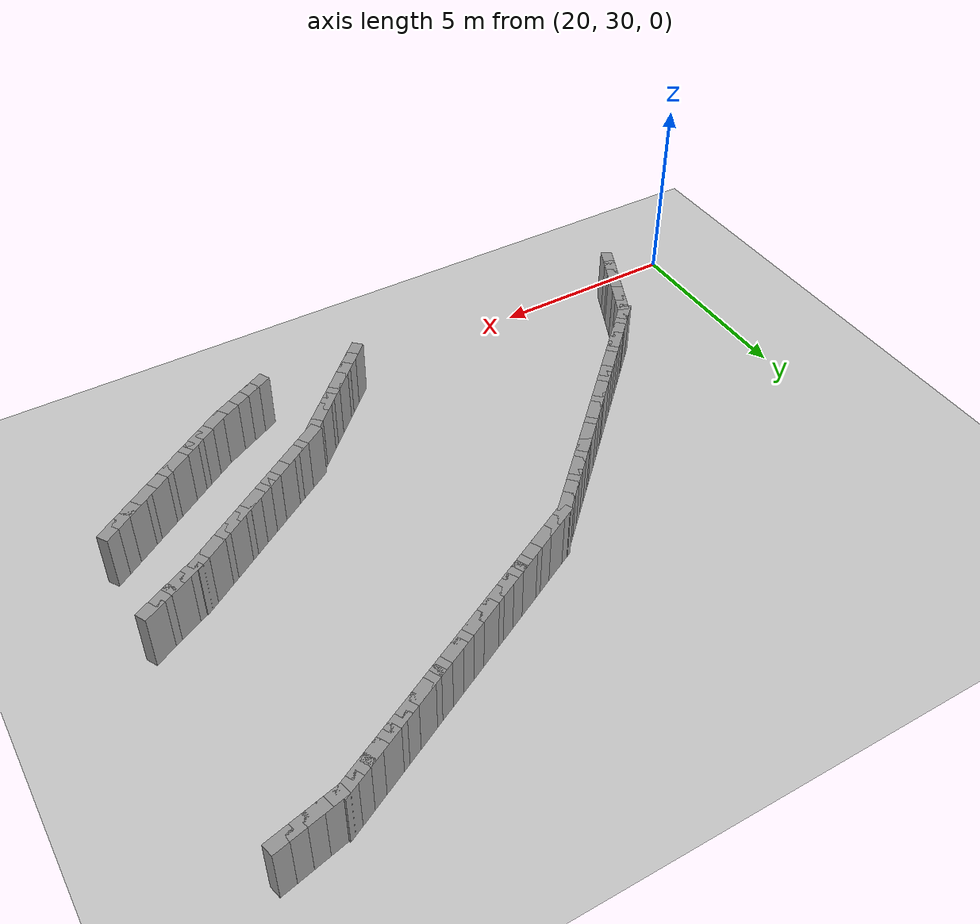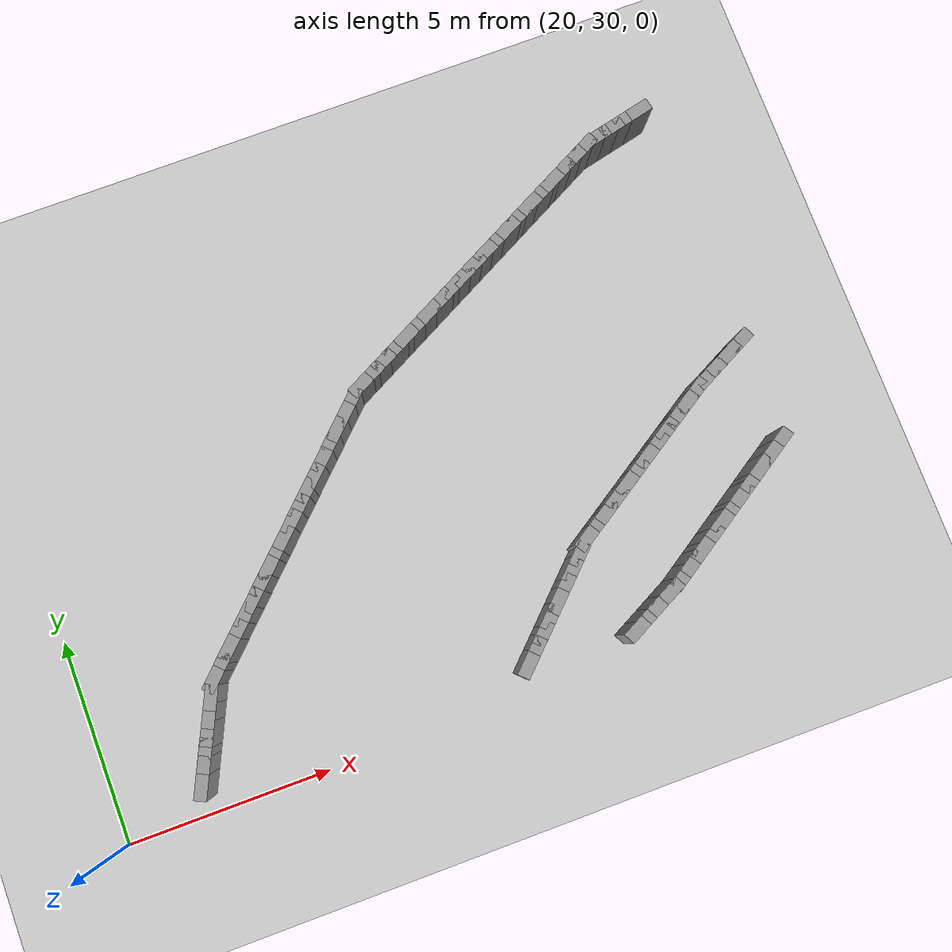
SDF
<sdf version="1.5">
 <world name="test_l_shape">
  <include><uri>model://sun</uri></include>
  <include><uri>model://ground_plane</uri></include>
  <model name="curbL_60">
   <static>true</static>
   <pose>37.414 42.278 0.750 0 0 -2.911</pose>
   <link name="link">
    <collision name="col"><geometry><box><size>0.600 0.300 1.500</size></box></geometry></collision>
    <visual name="vis">
     <geometry><box><size>0.600 0.300 1.500</size></box></geometry>
     <material><ambient>0.6 0.6 0.6 1</ambient><diffuse>0.6 0.6 0.6 1</diffuse></material>
    </visual>
   </link>
  </model>
  <model name="curbL_61">
   <static>true</static>
   <pose>37.024 42.187 0.750 0 0 -2.911</pose>
   <link name="link">
    <collision name="col"><geometry><box><size>0.600 0.300 1.500</size></box></geometry></collision>
    <visual name="vis">
     <geometry><box><size>0.600 0.300 1.500</size></box></geometry>
     <material><ambient>0.6 0.6 0.6 1</ambient><diffuse>0.6 0.6 0.6 1</diffuse></material>
    </visual>
   </link>
  </model>
  <model name="curbL_62">
   <static>true</static>
   <pose>36.635 42.096 0.750 0 0 -2.911</pose>
   <link name="link">
    <collision name="col"><geometry><box><size>0.600 0.300 1.500</size></box></geometry></collision>
    <visual name="vis">
     <geometry><box><size>0.600 0.300 1.500</size></box></geometry>
     <material><ambient>0.6 0.6 0.6 1</ambient><diffuse>0.6 0.6 0.6 1</diffuse></material>
    </visual>
   </link>
  </model>
  <model name="curbL_63">
   <static>true</static>
   <pose>36.245 42.005 0.750 0 0 -2.911</pose>
   <link name="link">
    <collision name="col"><geometry><box><size>0.600 0.300 1.500</size></box></geometry></collision>
    <visual name="vis">
     <geometry><box><size>0.600 0.300 1.500</size></box></geometry>
     <material><ambient>0.6 0.6 0.6 1</ambient><diffuse>0.6 0.6 0.6 1</diffuse></material>
    </visual>
   </link>
  </model>
  <model name="curbL_64">
   <static>true</static>
   <pose>35.867 41.885 0.750 0 0 -2.661</pose>
   <link name="link">
    <collision name="col"><geometry><box><size>0.600 0.300 1.500</size></box></geometry></collision>
    <visual name="vis">
     <geometry><box><size>0.600 0.300 1.500</size></box></geometry>
     <material><ambient>0.6 0.6 0.6 1</ambient><diffuse>0.6 0.6 0.6 1</diffuse></material>
    </visual>
   </link>
  </model>
  <model name="curbL_65">
   <static>true</static>
   <pose>35.512 41.700 0.750 0 0 -2.661</pose>
   <link name="link">
    <collision name="col"><geometry><box><size>0.600 0.300 1.500</size></box></geometry></collision>
    <visual name="vis">
     <geometry><box><size>0.600 0.300 1.500</size></box></geometry>
     <material><ambient>0.6 0.6 0.6 1</ambient><diffuse>0.6 0.6 0.6 1</diffuse></material>
    </visual>
   </link>
  </model>
  <model name="curbL_66">
   <static>true</static>
   <pose>35.157 41.515 0.750 0 0 -2.661</pose>
   <link name="link">
    <collision name="col"><geometry><box><size>0.600 0.300 1.500</size></box></geometry></collision>
    <visual name="vis">
     <geometry><box><size>0.600 0.300 1.500</size></box></geometry>
     <material><ambient>0.6 0.6 0.6 1</ambient><diffuse>0.6 0.6 0.6 1</diffuse></material>
    </visual>
   </link>
  </model>
  <model name="curbL_67">
   <static>true</static>
   <pose>34.802 41.330 0.750 0 0 -2.661</pose>
   <link name="link">
    <collision name="col"><geometry><box><size>0.600 0.300 1.500</size></box></geometry></collision>
    <visual name="vis">
     <geometry><box><size>0.600 0.300 1.500</size></box></geometry>
     <material><ambient>0.6 0.6 0.6 1</ambient><diffuse>0.6 0.6 0.6 1</diffuse></material>
    </visual>
   </link>
  </model>
  <model name="curbL_68">
   <static>true</static>
   <pose>34.448 41.145 0.750 0 0 -2.661</pose>
   <link name="link">
    <collision name="col"><geometry><box><size>0.600 0.300 1.500</size></box></geometry></collision>
    <visual name="vis">
     <geometry><box><size>0.600 0.300 1.500</size></box></geometry>
     <material><ambient>0.6 0.6 0.6 1</ambient><diffuse>0.6 0.6 0.6 1</diffuse></material>
    </visual>
   </link>
  </model>
  <model name="curbL_69">
   <static>true</static>
   <pose>34.093 40.960 0.750 0 0 -2.661</pose>
   <link name="link">
    <collision name="col"><geometry><box><size>0.600 0.300 1.500</size></box></geometry></collision>
    <visual name="vis">
     <geometry><box><size>0.600 0.300 1.500</size></box></geometry>
     <material><ambient>0.6 0.6 0.6 1</ambient><diffuse>0.6 0.6 0.6 1</diffuse></material>
    </visual>
   </link>
  </model>
  <model name="curbL_70">
   <static>true</static>
   <pose>33.738 40.775 0.750 0 0 -2.661</pose>
   <link name="link">
    <collision name="col"><geometry><box><size>0.600 0.300 1.500</size></box></geometry></collision>
    <visual name="vis">
     <geometry><box><size>0.600 0.300 1.500</size></box></geometry>
     <material><ambient>0.6 0.6 0.6 1</ambient><diffuse>0.6 0.6 0.6 1</diffuse></material>
    </visual>
   </link>
  </model>
  <model name="curbL_71">
   <static>true</static>
   <pose>33.384 40.590 0.750 0 0 -2.661</pose>
   <link name="link">
    <collision name="col"><geometry><box><size>0.600 0.300 1.500</size></box></geometry></collision>
    <visual name="vis">
     <geometry><box><size>0.600 0.300 1.500</size></box></geometry>
     <material><ambient>0.6 0.6 0.6 1</ambient><diffuse>0.6 0.6 0.6 1</diffuse></material>
    </visual>
   </link>
  </model>
  <model name="curbL_72">
   <static>true</static>
   <pose>33.029 40.405 0.750 0 0 -2.661</pose>
   <link name="link">
    <collision name="col"><geometry><box><size>0.600 0.300 1.500</size></box></geometry></collision>
    <visual name="vis">
     <geometry><box><size>0.600 0.300 1.500</size></box></geometry>
     <material><ambient>0.6 0.6 0.6 1</ambient><diffuse>0.6 0.6 0.6 1</diffuse></material>
    </visual>
   </link>
  </model>
  <model name="curbL_73">
   <static>true</static>
   <pose>32.674 40.220 0.750 0 0 -2.661</pose>
   <link name="link">
    <collision name="col"><geometry><box><size>0.600 0.300 1.500</size></box></geometry></collision>
    <visual name="vis">
     <geometry><box><size>0.600 0.300 1.500</size></box></geometry>
     <material><ambient>0.6 0.6 0.6 1</ambient><diffuse>0.6 0.6 0.6 1</diffuse></material>
    </visual>
   </link>
  </model>
  <model name="curbL_74">
   <static>true</static>
   <pose>32.320 40.036 0.750 0 0 -2.661</pose>
   <link name="link">
    <collision name="col"><geometry><box><size>0.600 0.300 1.500</size></box></geometry></collision>
    <visual name="vis">
     <geometry><box><size>0.600 0.300 1.500</size></box></geometry>
     <material><ambient>0.6 0.6 0.6 1</ambient><diffuse>0.6 0.6 0.6 1</diffuse></material>
    </visual>
   </link>
  </model>
  <model name="curbL_75">
   <static>true</static>
   <pose>31.965 39.851 0.750 0 0 -2.661</pose>
   <link name="link">
    <collision name="col"><geometry><box><size>0.600 0.300 1.500</size></box></geometry></collision>
    <visual name="vis">
     <geometry><box><size>0.600 0.300 1.500</size></box></geometry>
     <material><ambient>0.6 0.6 0.6 1</ambient><diffuse>0.6 0.6 0.6 1</diffuse></material>
    </visual>
   </link>
  </model>
  <model name="curbL_76">
   <static>true</static>
   <pose>31.610 39.666 0.750 0 0 -2.661</pose>
   <link name="link">
    <collision name="col"><geometry><box><size>0.600 0.300 1.500</size></box></geometry></collision>
    <visual name="vis">
     <geometry><box><size>0.600 0.300 1.500</size></box></geometry>
     <material><ambient>0.6 0.6 0.6 1</ambient><diffuse>0.6 0.6 0.6 1</diffuse></material>
    </visual>
   </link>
  </model>
  <model name="curbL_77">
   <static>true</static>
   <pose>31.256 39.481 0.750 0 0 -2.661</pose>
   <link name="link">
    <collision name="col"><geometry><box><size>0.600 0.300 1.500</size></box></geometry></collision>
    <visual name="vis">
     <geometry><box><size>0.600 0.300 1.500</size></box></geometry>
     <material><ambient>0.6 0.6 0.6 1</ambient><diffuse>0.6 0.6 0.6 1</diffuse></material>
    </visual>
   </link>
  </model>
  <model name="curbL_78">
   <static>true</static>
   <pose>30.901 39.296 0.750 0 0 -2.661</pose>
   <link name="link">
    <collision name="col"><geometry><box><size>0.600 0.300 1.500</size></box></geometry></collision>
    <visual name="vis">
     <geometry><box><size>0.600 0.300 1.500</size></box></geometry>
     <material><ambient>0.6 0.6 0.6 1</ambient><diffuse>0.6 0.6 0.6 1</diffuse></material>
    </visual>
   </link>
  </model>
  <model name="curbL_79">
   <static>true</static>
   <pose>30.546 39.111 0.750 0 0 -2.661</pose>
   <link name="link">
    <collision name="col"><geometry><box><size>0.600 0.300 1.500</size></box></geometry></collision>
    <visual name="vis">
     <geometry><box><size>0.600 0.300 1.500</size></box></geometry>
     <material><ambient>0.6 0.6 0.6 1</ambient><diffuse>0.6 0.6 0.6 1</diffuse></material>
    </visual>
   </link>
  </model>
  <model name="curbL_80">
   <static>true</static>
   <pose>30.191 38.926 0.750 0 0 -2.661</pose>
   <link name="link">
    <collision name="col"><geometry><box><size>0.600 0.300 1.500</size></box></geometry></collision>
    <visual name="vis">
     <geometry><box><size>0.600 0.300 1.500</size></box></geometry>
     <material><ambient>0.6 0.6 0.6 1</ambient><diffuse>0.6 0.6 0.6 1</diffuse></material>
    </visual>
   </link>
  </model>
  <model name="curbL_81">
   <static>true</static>
   <pose>29.837 38.741 0.750 0 0 -2.661</pose>
   <link name="link">
    <collision name="col"><geometry><box><size>0.600 0.300 1.500</size></box></geometry></collision>
    <visual name="vis">
     <geometry><box><size>0.600 0.300 1.500</size></box></geometry>
     <material><ambient>0.6 0.6 0.6 1</ambient><diffuse>0.6 0.6 0.6 1</diffuse></material>
    </visual>
   </link>
  </model>
  <model name="curbL_82">
   <static>true</static>
   <pose>29.482 38.556 0.750 0 0 -2.661</pose>
   <link name="link">
    <collision name="col"><geometry><box><size>0.600 0.300 1.500</size></box></geometry></collision>
    <visual name="vis">
     <geometry><box><size>0.600 0.300 1.500</size></box></geometry>
     <material><ambient>0.6 0.6 0.6 1</ambient><diffuse>0.6 0.6 0.6 1</diffuse></material>
    </visual>
   </link>
  </model>
  <model name="curbL_83">
   <static>true</static>
   <pose>29.127 38.371 0.750 0 0 -2.661</pose>
   <link name="link">
    <collision name="col"><geometry><box><size>0.600 0.300 1.500</size></box></geometry></collision>
    <visual name="vis">
     <geometry><box><size>0.600 0.300 1.500</size></box></geometry>
     <material><ambient>0.6 0.6 0.6 1</ambient><diffuse>0.6 0.6 0.6 1</diffuse></material>
    </visual>
   </link>
  </model>
  <model name="curbL_84">
   <static>true</static>
   <pose>28.773 38.186 0.750 0 0 -2.661</pose>
   <link name="link">
    <collision name="col"><geometry><box><size>0.600 0.300 1.500</size></box></geometry></collision>
    <visual name="vis">
     <geometry><box><size>0.600 0.300 1.500</size></box></geometry>
     <material><ambient>0.6 0.6 0.6 1</ambient><diffuse>0.6 0.6 0.6 1</diffuse></material>
    </visual>
   </link>
  </model>
  <model name="curbL_85">
   <static>true</static>
   <pose>28.460 37.943 0.750 0 0 -2.367</pose>
   <link name="link">
    <collision name="col"><geometry><box><size>0.600 0.300 1.500</size></box></geometry></collision>
    <visual name="vis">
     <geometry><box><size>0.600 0.300 1.500</size></box></geometry>
     <material><ambient>0.6 0.6 0.6 1</ambient><diffuse>0.6 0.6 0.6 1</diffuse></material>
    </visual>
   </link>
  </model>
  <model name="curbL_86">
   <static>true</static>
   <pose>28.174 37.663 0.750 0 0 -2.367</pose>
   <link name="link">
    <collision name="col"><geometry><box><size>0.600 0.300 1.500</size></box></geometry></collision>
    <visual name="vis">
     <geometry><box><size>0.600 0.300 1.500</size></box></geometry>
     <material><ambient>0.6 0.6 0.6 1</ambient><diffuse>0.6 0.6 0.6 1</diffuse></material>
    </visual>
   </link>
  </model>
  <model name="curbL_87">
   <static>true</static>
   <pose>27.889 37.384 0.750 0 0 -2.367</pose>
   <link name="link">
    <collision name="col"><geometry><box><size>0.600 0.300 1.500</size></box></geometry></collision>
    <visual name="vis">
     <geometry><box><size>0.600 0.300 1.500</size></box></geometry>
     <material><ambient>0.6 0.6 0.6 1</ambient><diffuse>0.6 0.6 0.6 1</diffuse></material>
    </visual>
   </link>
  </model>
  <model name="curbL_88">
   <static>true</static>
   <pose>27.603 37.104 0.750 0 0 -2.367</pose>
   <link name="link">
    <collision name="col"><geometry><box><size>0.600 0.300 1.500</size></box></geometry></collision>
    <visual name="vis">
     <geometry><box><size>0.600 0.300 1.500</size></box></geometry>
     <material><ambient>0.6 0.6 0.6 1</ambient><diffuse>0.6 0.6 0.6 1</diffuse></material>
    </visual>
   </link>
  </model>
  <model name="curbL_89">
   <static>true</static>
   <pose>27.317 36.824 0.750 0 0 -2.367</pose>
   <link name="link">
    <collision name="col"><geometry><box><size>0.600 0.300 1.500</size></box></geometry></collision>
    <visual name="vis">
     <geometry><box><size>0.600 0.300 1.500</size></box></geometry>
     <material><ambient>0.6 0.6 0.6 1</ambient><diffuse>0.6 0.6 0.6 1</diffuse></material>
    </visual>
   </link>
  </model>
  <model name="curbL_90">
   <static>true</static>
   <pose>27.031 36.544 0.750 0 0 -2.367</pose>
   <link name="link">
    <collision name="col"><geometry><box><size>0.600 0.300 1.500</size></box></geometry></collision>
    <visual name="vis">
     <geometry><box><size>0.600 0.300 1.500</size></box></geometry>
     <material><ambient>0.6 0.6 0.6 1</ambient><diffuse>0.6 0.6 0.6 1</diffuse></material>
    </visual>
   </link>
  </model>
  <model name="curbL_91">
   <static>true</static>
   <pose>26.745 36.265 0.750 0 0 -2.367</pose>
   <link name="link">
    <collision name="col"><geometry><box><size>0.600 0.300 1.500</size></box></geometry></collision>
    <visual name="vis">
     <geometry><box><size>0.600 0.300 1.500</size></box></geometry>
     <material><ambient>0.6 0.6 0.6 1</ambient><diffuse>0.6 0.6 0.6 1</diffuse></material>
    </visual>
   </link>
  </model>
  <model name="curbL_92">
   <static>true</static>
   <pose>26.459 35.985 0.750 0 0 -2.367</pose>
   <link name="link">
    <collision name="col"><geometry><box><size>0.600 0.300 1.500</size></box></geometry></collision>
    <visual name="vis">
     <geometry><box><size>0.600 0.300 1.500</size></box></geometry>
     <material><ambient>0.6 0.6 0.6 1</ambient><diffuse>0.6 0.6 0.6 1</diffuse></material>
    </visual>
   </link>
  </model>
  <model name="curbL_93">
   <static>true</static>
   <pose>26.173 35.705 0.750 0 0 -2.367</pose>
   <link name="link">
    <collision name="col"><geometry><box><size>0.600 0.300 1.500</size></box></geometry></collision>
    <visual name="vis">
     <geometry><box><size>0.600 0.300 1.500</size></box></geometry>
     <material><ambient>0.6 0.6 0.6 1</ambient><diffuse>0.6 0.6 0.6 1</diffuse></material>
    </visual>
   </link>
  </model>
  <model name="curbL_94">
   <static>true</static>
   <pose>25.887 35.425 0.750 0 0 -2.367</pose>
   <link name="link">
    <collision name="col"><geometry><box><size>0.600 0.300 1.500</size></box></geometry></collision>
    <visual name="vis">
     <geometry><box><size>0.600 0.300 1.500</size></box></geometry>
     <material><ambient>0.6 0.6 0.6 1</ambient><diffuse>0.6 0.6 0.6 1</diffuse></material>
    </visual>
   </link>
  </model>
  <model name="curbL_95">
   <static>true</static>
   <pose>25.601 35.146 0.750 0 0 -2.367</pose>
   <link name="link">
    <collision name="col"><geometry><box><size>0.600 0.300 1.500</size></box></geometry></collision>
    <visual name="vis">
     <geometry><box><size>0.600 0.300 1.500</size></box></geometry>
     <material><ambient>0.6 0.6 0.6 1</ambient><diffuse>0.6 0.6 0.6 1</diffuse></material>
    </visual>
   </link>
  </model>
  <model name="curbL_96">
   <static>true</static>
   <pose>25.315 34.866 0.750 0 0 -2.367</pose>
   <link name="link">
    <collision name="col"><geometry><box><size>0.600 0.300 1.500</size></box></geometry></collision>
    <visual name="vis">
     <geometry><box><size>0.600 0.300 1.500</size></box></geometry>
     <material><ambient>0.6 0.6 0.6 1</ambient><diffuse>0.6 0.6 0.6 1</diffuse></material>
    </visual>
   </link>
  </model>
  <model name="curbL_97">
   <static>true</static>
   <pose>25.029 34.586 0.750 0 0 -2.367</pose>
   <link name="link">
    <collision name="col"><geometry><box><size>0.600 0.300 1.500</size></box></geometry></collision>
    <visual name="vis">
     <geometry><box><size>0.600 0.300 1.500</size></box></geometry>
     <material><ambient>0.6 0.6 0.6 1</ambient><diffuse>0.6 0.6 0.6 1</diffuse></material>
    </visual>
   </link>
  </model>
  <model name="curbL_98">
   <static>true</static>
   <pose>24.743 34.306 0.750 0 0 -2.367</pose>
   <link name="link">
    <collision name="col"><geometry><box><size>0.600 0.300 1.500</size></box></geometry></collision>
    <visual name="vis">
     <geometry><box><size>0.600 0.300 1.500</size></box></geometry>
     <material><ambient>0.6 0.6 0.6 1</ambient><diffuse>0.6 0.6 0.6 1</diffuse></material>
    </visual>
   </link>
  </model>
  <model name="curbL_99">
   <static>true</static>
   <pose>24.458 34.027 0.750 0 0 -2.367</pose>
   <link name="link">
    <collision name="col"><geometry><box><size>0.600 0.300 1.500</size></box></geometry></collision>
    <visual name="vis">
     <geometry><box><size>0.600 0.300 1.500</size></box></geometry>
     <material><ambient>0.6 0.6 0.6 1</ambient><diffuse>0.6 0.6 0.6 1</diffuse></material>
    </visual>
   </link>
  </model>
  <model name="curbL_100">
   <static>true</static>
   <pose>24.172 33.747 0.750 0 0 -2.367</pose>
   <link name="link">
    <collision name="col"><geometry><box><size>0.600 0.300 1.500</size></box></geometry></collision>
    <visual name="vis">
     <geometry><box><size>0.600 0.300 1.500</size></box></geometry>
     <material><ambient>0.6 0.6 0.6 1</ambient><diffuse>0.6 0.6 0.6 1</diffuse></material>
    </visual>
   </link>
  </model>
  <model name="curbL_101">
   <static>true</static>
   <pose>23.886 33.467 0.750 0 0 -2.367</pose>
   <link name="link">
    <collision name="col"><geometry><box><size>0.600 0.300 1.500</size></box></geometry></collision>
    <visual name="vis">
     <geometry><box><size>0.600 0.300 1.500</size></box></geometry>
     <material><ambient>0.6 0.6 0.6 1</ambient><diffuse>0.6 0.6 0.6 1</diffuse></material>
    </visual>
   </link>
  </model>
  <model name="curbL_102">
   <static>true</static>
   <pose>23.600 33.188 0.750 0 0 -2.367</pose>
   <link name="link">
    <collision name="col"><geometry><box><size>0.600 0.300 1.500</size></box></geometry></collision>
    <visual name="vis">
     <geometry><box><size>0.600 0.300 1.500</size></box></geometry>
     <material><ambient>0.6 0.6 0.6 1</ambient><diffuse>0.6 0.6 0.6 1</diffuse></material>
    </visual>
   </link>
  </model>
  <model name="curbL_103">
   <static>true</static>
   <pose>23.314 32.908 0.750 0 0 -2.367</pose>
   <link name="link">
    <collision name="col"><geometry><box><size>0.600 0.300 1.500</size></box></geometry></collision>
    <visual name="vis">
     <geometry><box><size>0.600 0.300 1.500</size></box></geometry>
     <material><ambient>0.6 0.6 0.6 1</ambient><diffuse>0.6 0.6 0.6 1</diffuse></material>
    </visual>
   </link>
  </model>
  <model name="curbL_104">
   <static>true</static>
   <pose>23.133 32.554 0.750 0 0 -2.002</pose>
   <link name="link">
    <collision name="col"><geometry><box><size>0.600 0.300 1.500</size></box></geometry></collision>
    <visual name="vis">
     <geometry><box><size>0.600 0.300 1.500</size></box></geometry>
     <material><ambient>0.6 0.6 0.6 1</ambient><diffuse>0.6 0.6 0.6 1</diffuse></material>
    </visual>
   </link>
  </model>
  <model name="curbL_105">
   <static>true</static>
   <pose>22.966 32.191 0.750 0 0 -2.002</pose>
   <link name="link">
    <collision name="col"><geometry><box><size>0.600 0.300 1.500</size></box></geometry></collision>
    <visual name="vis">
     <geometry><box><size>0.600 0.300 1.500</size></box></geometry>
     <material><ambient>0.6 0.6 0.6 1</ambient><diffuse>0.6 0.6 0.6 1</diffuse></material>
    </visual>
   </link>
  </model>
  <model name="curbL_106">
   <static>true</static>
   <pose>22.799 31.827 0.750 0 0 -2.002</pose>
   <link name="link">
    <collision name="col"><geometry><box><size>0.600 0.300 1.500</size></box></geometry></collision>
    <visual name="vis">
     <geometry><box><size>0.600 0.300 1.500</size></box></geometry>
     <material><ambient>0.6 0.6 0.6 1</ambient><diffuse>0.6 0.6 0.6 1</diffuse></material>
    </visual>
   </link>
  </model>
  <model name="curbL_107">
   <static>true</static>
   <pose>22.631 31.464 0.750 0 0 -2.002</pose>
   <link name="link">
    <collision name="col"><geometry><box><size>0.600 0.300 1.500</size></box></geometry></collision>
    <visual name="vis">
     <geometry><box><size>0.600 0.300 1.500</size></box></geometry>
     <material><ambient>0.6 0.6 0.6 1</ambient><diffuse>0.6 0.6 0.6 1</diffuse></material>
    </visual>
   </link>
  </model>
  <model name="curbL_108">
   <static>true</static>
   <pose>22.464 31.101 0.750 0 0 -2.002</pose>
   <link name="link">
    <collision name="col"><geometry><box><size>0.600 0.300 1.500</size></box></geometry></collision>
    <visual name="vis">
     <geometry><box><size>0.600 0.300 1.500</size></box></geometry>
     <material><ambient>0.6 0.6 0.6 1</ambient><diffuse>0.6 0.6 0.6 1</diffuse></material>
    </visual>
   </link>
  </model>
  <model name="curbL_109">
   <static>true</static>
   <pose>22.297 30.737 0.750 0 0 -2.002</pose>
   <link name="link">
    <collision name="col"><geometry><box><size>0.600 0.300 1.500</size></box></geometry></collision>
    <visual name="vis">
     <geometry><box><size>0.600 0.300 1.500</size></box></geometry>
     <material><ambient>0.6 0.6 0.6 1</ambient><diffuse>0.6 0.6 0.6 1</diffuse></material>
    </visual>
   </link>
  </model>
  <model name="curbR_6">
   <static>true</static>
   <pose>30.177 30.743 0.750 0 0 0.775</pose>
   <link name="link">
    <collision name="col"><geometry><box><size>0.600 0.300 1.500</size></box></geometry></collision>
    <visual name="vis">
     <geometry><box><size>0.600 0.300 1.500</size></box></geometry>
     <material><ambient>0.6 0.6 0.6 1</ambient><diffuse>0.6 0.6 0.6 1</diffuse></material>
    </visual>
   </link>
  </model>
  <model name="curbR_7">
   <static>true</static>
   <pose>30.463 31.023 0.750 0 0 0.775</pose>
   <link name="link">
    <collision name="col"><geometry><box><size>0.600 0.300 1.500</size></box></geometry></collision>
    <visual name="vis">
     <geometry><box><size>0.600 0.300 1.500</size></box></geometry>
     <material><ambient>0.6 0.6 0.6 1</ambient><diffuse>0.6 0.6 0.6 1</diffuse></material>
    </visual>
   </link>
  </model>
  <model name="curbR_8">
   <static>true</static>
   <pose>30.749 31.303 0.750 0 0 0.775</pose>
   <link name="link">
    <collision name="col"><geometry><box><size>0.600 0.300 1.500</size></box></geometry></collision>
    <visual name="vis">
     <geometry><box><size>0.600 0.300 1.500</size></box></geometry>
     <material><ambient>0.6 0.6 0.6 1</ambient><diffuse>0.6 0.6 0.6 1</diffuse></material>
    </visual>
   </link>
  </model>
  <model name="curbR_9">
   <static>true</static>
   <pose>31.034 31.583 0.750 0 0 0.775</pose>
   <link name="link">
    <collision name="col"><geometry><box><size>0.600 0.300 1.500</size></box></geometry></collision>
    <visual name="vis">
     <geometry><box><size>0.600 0.300 1.500</size></box></geometry>
     <material><ambient>0.6 0.6 0.6 1</ambient><diffuse>0.6 0.6 0.6 1</diffuse></material>
    </visual>
   </link>
  </model>
  <model name="curbR_10">
   <static>true</static>
   <pose>31.320 31.863 0.750 0 0 0.775</pose>
   <link name="link">
    <collision name="col"><geometry><box><size>0.600 0.300 1.500</size></box></geometry></collision>
    <visual name="vis">
     <geometry><box><size>0.600 0.300 1.500</size></box></geometry>
     <material><ambient>0.6 0.6 0.6 1</ambient><diffuse>0.6 0.6 0.6 1</diffuse></material>
    </visual>
   </link>
  </model>
  <model name="curbR_11">
   <static>true</static>
   <pose>31.606 32.143 0.750 0 0 0.775</pose>
   <link name="link">
    <collision name="col"><geometry><box><size>0.600 0.300 1.500</size></box></geometry></collision>
    <visual name="vis">
     <geometry><box><size>0.600 0.300 1.500</size></box></geometry>
     <material><ambient>0.6 0.6 0.6 1</ambient><diffuse>0.6 0.6 0.6 1</diffuse></material>
    </visual>
   </link>
  </model>
  <model name="curbR_12">
   <static>true</static>
   <pose>31.891 32.423 0.750 0 0 0.775</pose>
   <link name="link">
    <collision name="col"><geometry><box><size>0.600 0.300 1.500</size></box></geometry></collision>
    <visual name="vis">
     <geometry><box><size>0.600 0.300 1.500</size></box></geometry>
     <material><ambient>0.6 0.6 0.6 1</ambient><diffuse>0.6 0.6 0.6 1</diffuse></material>
    </visual>
   </link>
  </model>
  <model name="curbR_13">
   <static>true</static>
   <pose>32.177 32.703 0.750 0 0 0.775</pose>
   <link name="link">
    <collision name="col"><geometry><box><size>0.600 0.300 1.500</size></box></geometry></collision>
    <visual name="vis">
     <geometry><box><size>0.600 0.300 1.500</size></box></geometry>
     <material><ambient>0.6 0.6 0.6 1</ambient><diffuse>0.6 0.6 0.6 1</diffuse></material>
    </visual>
   </link>
  </model>
  <model name="curbR_14">
   <static>true</static>
   <pose>32.463 32.982 0.750 0 0 0.574</pose>
   <link name="link">
    <collision name="col"><geometry><box><size>0.600 0.300 1.500</size></box></geometry></collision>
    <visual name="vis">
     <geometry><box><size>0.600 0.300 1.500</size></box></geometry>
     <material><ambient>0.6 0.6 0.6 1</ambient><diffuse>0.6 0.6 0.6 1</diffuse></material>
    </visual>
   </link>
  </model>
  <model name="curbR_15">
   <static>true</static>
   <pose>32.799 33.199 0.750 0 0 0.574</pose>
   <link name="link">
    <collision name="col"><geometry><box><size>0.600 0.300 1.500</size></box></geometry></collision>
    <visual name="vis">
     <geometry><box><size>0.600 0.300 1.500</size></box></geometry>
     <material><ambient>0.6 0.6 0.6 1</ambient><diffuse>0.6 0.6 0.6 1</diffuse></material>
    </visual>
   </link>
  </model>
  <model name="curbR_16">
   <static>true</static>
   <pose>33.135 33.416 0.750 0 0 0.574</pose>
   <link name="link">
    <collision name="col"><geometry><box><size>0.600 0.300 1.500</size></box></geometry></collision>
    <visual name="vis">
     <geometry><box><size>0.600 0.300 1.500</size></box></geometry>
     <material><ambient>0.6 0.6 0.6 1</ambient><diffuse>0.6 0.6 0.6 1</diffuse></material>
    </visual>
   </link>
  </model>
  <model name="curbR_17">
   <static>true</static>
   <pose>33.471 33.634 0.750 0 0 0.574</pose>
   <link name="link">
    <collision name="col"><geometry><box><size>0.600 0.300 1.500</size></box></geometry></collision>
    <visual name="vis">
     <geometry><box><size>0.600 0.300 1.500</size></box></geometry>
     <material><ambient>0.6 0.6 0.6 1</ambient><diffuse>0.6 0.6 0.6 1</diffuse></material>
    </visual>
   </link>
  </model>
  <model name="curbR_18">
   <static>true</static>
   <pose>33.807 33.851 0.750 0 0 0.574</pose>
   <link name="link">
    <collision name="col"><geometry><box><size>0.600 0.300 1.500</size></box></geometry></collision>
    <visual name="vis">
     <geometry><box><size>0.600 0.300 1.500</size></box></geometry>
     <material><ambient>0.6 0.6 0.6 1</ambient><diffuse>0.6 0.6 0.6 1</diffuse></material>
    </visual>
   </link>
  </model>
  <model name="curbR_19">
   <static>true</static>
   <pose>34.143 34.068 0.750 0 0 0.574</pose>
   <link name="link">
    <collision name="col"><geometry><box><size>0.600 0.300 1.500</size></box></geometry></collision>
    <visual name="vis">
     <geometry><box><size>0.600 0.300 1.500</size></box></geometry>
     <material><ambient>0.6 0.6 0.6 1</ambient><diffuse>0.6 0.6 0.6 1</diffuse></material>
    </visual>
   </link>
  </model>
  <model name="curbR_20">
   <static>true</static>
   <pose>34.479 34.285 0.750 0 0 0.574</pose>
   <link name="link">
    <collision name="col"><geometry><box><size>0.600 0.300 1.500</size></box></geometry></collision>
    <visual name="vis">
     <geometry><box><size>0.600 0.300 1.500</size></box></geometry>
     <material><ambient>0.6 0.6 0.6 1</ambient><diffuse>0.6 0.6 0.6 1</diffuse></material>
    </visual>
   </link>
  </model>
  <model name="curbR_21">
   <static>true</static>
   <pose>34.815 34.502 0.750 0 0 0.574</pose>
   <link name="link">
    <collision name="col"><geometry><box><size>0.600 0.300 1.500</size></box></geometry></collision>
    <visual name="vis">
     <geometry><box><size>0.600 0.300 1.500</size></box></geometry>
     <material><ambient>0.6 0.6 0.6 1</ambient><diffuse>0.6 0.6 0.6 1</diffuse></material>
    </visual>
   </link>
  </model>
  <model name="curbR_22">
   <static>true</static>
   <pose>35.151 34.720 0.750 0 0 0.574</pose>
   <link name="link">
    <collision name="col"><geometry><box><size>0.600 0.300 1.500</size></box></geometry></collision>
    <visual name="vis">
     <geometry><box><size>0.600 0.300 1.500</size></box></geometry>
     <material><ambient>0.6 0.6 0.6 1</ambient><diffuse>0.6 0.6 0.6 1</diffuse></material>
    </visual>
   </link>
  </model>
  <model name="curbR_23">
   <static>true</static>
   <pose>35.487 34.937 0.750 0 0 0.574</pose>
   <link name="link">
    <collision name="col"><geometry><box><size>0.600 0.300 1.500</size></box></geometry></collision>
    <visual name="vis">
     <geometry><box><size>0.600 0.300 1.500</size></box></geometry>
     <material><ambient>0.6 0.6 0.6 1</ambient><diffuse>0.6 0.6 0.6 1</diffuse></material>
    </visual>
   </link>
  </model>
  <model name="curbR_24">
   <static>true</static>
   <pose>35.822 35.154 0.750 0 0 0.574</pose>
   <link name="link">
    <collision name="col"><geometry><box><size>0.600 0.300 1.500</size></box></geometry></collision>
    <visual name="vis">
     <geometry><box><size>0.600 0.300 1.500</size></box></geometry>
     <material><ambient>0.6 0.6 0.6 1</ambient><diffuse>0.6 0.6 0.6 1</diffuse></material>
    </visual>
   </link>
  </model>
  <model name="curbR_25">
   <static>true</static>
   <pose>36.158 35.371 0.750 0 0 0.574</pose>
   <link name="link">
    <collision name="col"><geometry><box><size>0.600 0.300 1.500</size></box></geometry></collision>
    <visual name="vis">
     <geometry><box><size>0.600 0.300 1.500</size></box></geometry>
     <material><ambient>0.6 0.6 0.6 1</ambient><diffuse>0.6 0.6 0.6 1</diffuse></material>
    </visual>
   </link>
  </model>
  <model name="curbR_26">
   <static>true</static>
   <pose>36.508 35.564 0.750 0 0 0.477</pose>
   <link name="link">
    <collision name="col"><geometry><box><size>0.600 0.300 1.500</size></box></geometry></collision>
    <visual name="vis">
     <geometry><box><size>0.600 0.300 1.500</size></box></geometry>
     <material><ambient>0.6 0.6 0.6 1</ambient><diffuse>0.6 0.6 0.6 1</diffuse></material>
    </visual>
   </link>
  </model>
  <model name="curbR_27">
   <static>true</static>
   <pose>36.863 35.748 0.750 0 0 0.477</pose>
   <link name="link">
    <collision name="col"><geometry><box><size>0.600 0.300 1.500</size></box></geometry></collision>
    <visual name="vis">
     <geometry><box><size>0.600 0.300 1.500</size></box></geometry>
     <material><ambient>0.6 0.6 0.6 1</ambient><diffuse>0.6 0.6 0.6 1</diffuse></material>
    </visual>
   </link>
  </model>
  <model name="curbR_28">
   <static>true</static>
   <pose>37.219 35.931 0.750 0 0 0.477</pose>
   <link name="link">
    <collision name="col"><geometry><box><size>0.600 0.300 1.500</size></box></geometry></collision>
    <visual name="vis">
     <geometry><box><size>0.600 0.300 1.500</size></box></geometry>
     <material><ambient>0.6 0.6 0.6 1</ambient><diffuse>0.6 0.6 0.6 1</diffuse></material>
    </visual>
   </link>
  </model>
  <model name="curbR_29">
   <static>true</static>
   <pose>37.574 36.115 0.750 0 0 0.477</pose>
   <link name="link">
    <collision name="col"><geometry><box><size>0.600 0.300 1.500</size></box></geometry></collision>
    <visual name="vis">
     <geometry><box><size>0.600 0.300 1.500</size></box></geometry>
     <material><ambient>0.6 0.6 0.6 1</ambient><diffuse>0.6 0.6 0.6 1</diffuse></material>
    </visual>
   </link>
  </model>
  <model name="curbR_68">
   <static>true</static>
   <pose>37.561 33.580 0.750 0 0 -2.562</pose>
   <link name="link">
    <collision name="col"><geometry><box><size>0.600 0.300 1.500</size></box></geometry></collision>
    <visual name="vis">
     <geometry><box><size>0.600 0.300 1.500</size></box></geometry>
     <material><ambient>0.6 0.6 0.6 1</ambient><diffuse>0.6 0.6 0.6 1</diffuse></material>
    </visual>
   </link>
  </model>
  <model name="curbR_69">
   <static>true</static>
   <pose>37.226 33.361 0.750 0 0 -2.562</pose>
   <link name="link">
    <collision name="col"><geometry><box><size>0.600 0.300 1.500</size></box></geometry></collision>
    <visual name="vis">
     <geometry><box><size>0.600 0.300 1.500</size></box></geometry>
     <material><ambient>0.6 0.6 0.6 1</ambient><diffuse>0.6 0.6 0.6 1</diffuse></material>
    </visual>
   </link>
  </model>
  <model name="curbR_70">
   <static>true</static>
   <pose>36.891 33.142 0.750 0 0 -2.562</pose>
   <link name="link">
    <collision name="col"><geometry><box><size>0.600 0.300 1.500</size></box></geometry></collision>
    <visual name="vis">
     <geometry><box><size>0.600 0.300 1.500</size></box></geometry>
     <material><ambient>0.6 0.6 0.6 1</ambient><diffuse>0.6 0.6 0.6 1</diffuse></material>
    </visual>
   </link>
  </model>
  <model name="curbR_71">
   <static>true</static>
   <pose>36.557 32.923 0.750 0 0 -2.562</pose>
   <link name="link">
    <collision name="col"><geometry><box><size>0.600 0.300 1.500</size></box></geometry></collision>
    <visual name="vis">
     <geometry><box><size>0.600 0.300 1.500</size></box></geometry>
     <material><ambient>0.6 0.6 0.6 1</ambient><diffuse>0.6 0.6 0.6 1</diffuse></material>
    </visual>
   </link>
  </model>
  <model name="curbR_72">
   <static>true</static>
   <pose>36.222 32.704 0.750 0 0 -2.562</pose>
   <link name="link">
    <collision name="col"><geometry><box><size>0.600 0.300 1.500</size></box></geometry></collision>
    <visual name="vis">
     <geometry><box><size>0.600 0.300 1.500</size></box></geometry>
     <material><ambient>0.6 0.6 0.6 1</ambient><diffuse>0.6 0.6 0.6 1</diffuse></material>
    </visual>
   </link>
  </model>
  <model name="curbR_73">
   <static>true</static>
   <pose>35.888 32.485 0.750 0 0 -2.562</pose>
   <link name="link">
    <collision name="col"><geometry><box><size>0.600 0.300 1.500</size></box></geometry></collision>
    <visual name="vis">
     <geometry><box><size>0.600 0.300 1.500</size></box></geometry>
     <material><ambient>0.6 0.6 0.6 1</ambient><diffuse>0.6 0.6 0.6 1</diffuse></material>
    </visual>
   </link>
  </model>
  <model name="curbR_74">
   <static>true</static>
   <pose>35.553 32.266 0.750 0 0 -2.562</pose>
   <link name="link">
    <collision name="col"><geometry><box><size>0.600 0.300 1.500</size></box></geometry></collision>
    <visual name="vis">
     <geometry><box><size>0.600 0.300 1.500</size></box></geometry>
     <material><ambient>0.6 0.6 0.6 1</ambient><diffuse>0.6 0.6 0.6 1</diffuse></material>
    </visual>
   </link>
  </model>
  <model name="curbR_75">
   <static>true</static>
   <pose>35.218 32.046 0.750 0 0 -2.562</pose>
   <link name="link">
    <collision name="col"><geometry><box><size>0.600 0.300 1.500</size></box></geometry></collision>
    <visual name="vis">
     <geometry><box><size>0.600 0.300 1.500</size></box></geometry>
     <material><ambient>0.6 0.6 0.6 1</ambient><diffuse>0.6 0.6 0.6 1</diffuse></material>
    </visual>
   </link>
  </model>
  <model name="curbR_76">
   <static>true</static>
   <pose>34.884 31.827 0.750 0 0 -2.562</pose>
   <link name="link">
    <collision name="col"><geometry><box><size>0.600 0.300 1.500</size></box></geometry></collision>
    <visual name="vis">
     <geometry><box><size>0.600 0.300 1.500</size></box></geometry>
     <material><ambient>0.6 0.6 0.6 1</ambient><diffuse>0.6 0.6 0.6 1</diffuse></material>
    </visual>
   </link>
  </model>
  <model name="curbR_77">
   <static>true</static>
   <pose>34.549 31.608 0.750 0 0 -2.562</pose>
   <link name="link">
    <collision name="col"><geometry><box><size>0.600 0.300 1.500</size></box></geometry></collision>
    <visual name="vis">
     <geometry><box><size>0.600 0.300 1.500</size></box></geometry>
     <material><ambient>0.6 0.6 0.6 1</ambient><diffuse>0.6 0.6 0.6 1</diffuse></material>
    </visual>
   </link>
  </model>
  <model name="curbR_78">
   <static>true</static>
   <pose>34.214 31.389 0.750 0 0 -2.562</pose>
   <link name="link">
    <collision name="col"><geometry><box><size>0.600 0.300 1.500</size></box></geometry></collision>
    <visual name="vis">
     <geometry><box><size>0.600 0.300 1.500</size></box></geometry>
     <material><ambient>0.6 0.6 0.6 1</ambient><diffuse>0.6 0.6 0.6 1</diffuse></material>
    </visual>
   </link>
  </model>
  <model name="curbR_79">
   <static>true</static>
   <pose>33.866 31.193 0.750 0 0 -2.663</pose>
   <link name="link">
    <collision name="col"><geometry><box><size>0.600 0.300 1.500</size></box></geometry></collision>
    <visual name="vis">
     <geometry><box><size>0.600 0.300 1.500</size></box></geometry>
     <material><ambient>0.6 0.6 0.6 1</ambient><diffuse>0.6 0.6 0.6 1</diffuse></material>
    </visual>
   </link>
  </model>
  <model name="curbR_80">
   <static>true</static>
   <pose>33.511 31.008 0.750 0 0 -2.663</pose>
   <link name="link">
    <collision name="col"><geometry><box><size>0.600 0.300 1.500</size></box></geometry></collision>
    <visual name="vis">
     <geometry><box><size>0.600 0.300 1.500</size></box></geometry>
     <material><ambient>0.6 0.6 0.6 1</ambient><diffuse>0.6 0.6 0.6 1</diffuse></material>
    </visual>
   </link>
  </model>
  <model name="curbR_81">
   <static>true</static>
   <pose>33.157 30.824 0.750 0 0 -2.663</pose>
   <link name="link">
    <collision name="col"><geometry><box><size>0.600 0.300 1.500</size></box></geometry></collision>
    <visual name="vis">
     <geometry><box><size>0.600 0.300 1.500</size></box></geometry>
     <material><ambient>0.6 0.6 0.6 1</ambient><diffuse>0.6 0.6 0.6 1</diffuse></material>
    </visual>
   </link>
  </model>
  <model name="curbR_82">
   <static>true</static>
   <pose>32.802 30.639 0.750 0 0 -2.663</pose>
   <link name="link">
    <collision name="col"><geometry><box><size>0.600 0.300 1.500</size></box></geometry></collision>
    <visual name="vis">
     <geometry><box><size>0.600 0.300 1.500</size></box></geometry>
     <material><ambient>0.6 0.6 0.6 1</ambient><diffuse>0.6 0.6 0.6 1</diffuse></material>
    </visual>
   </link>
  </model>
 </world>
</sdf>
